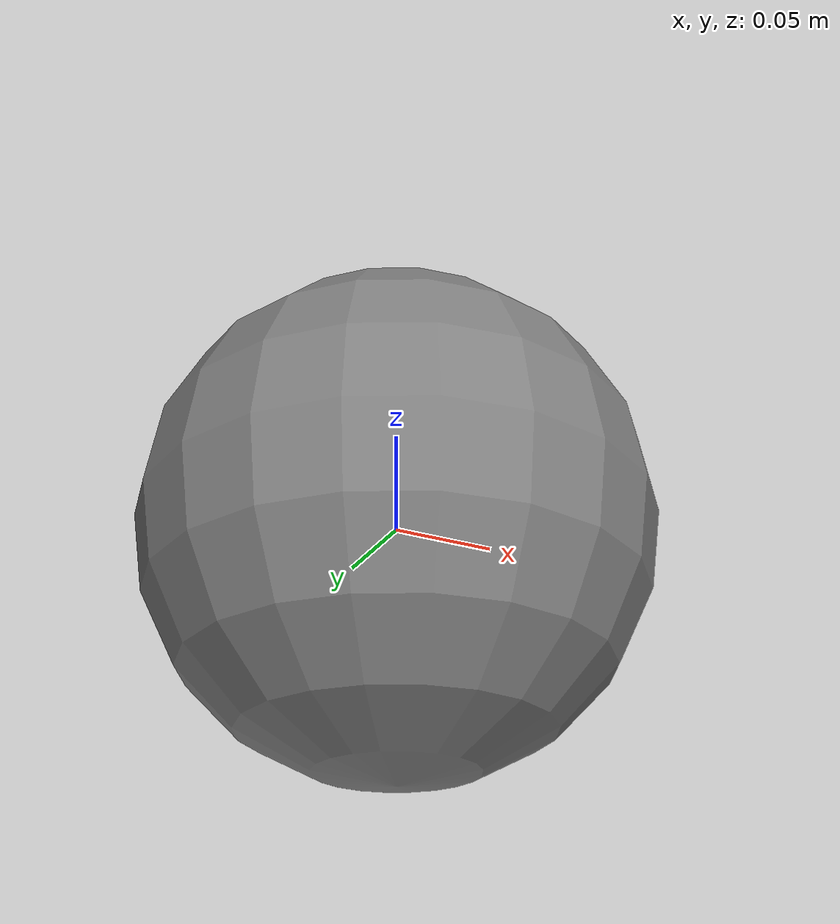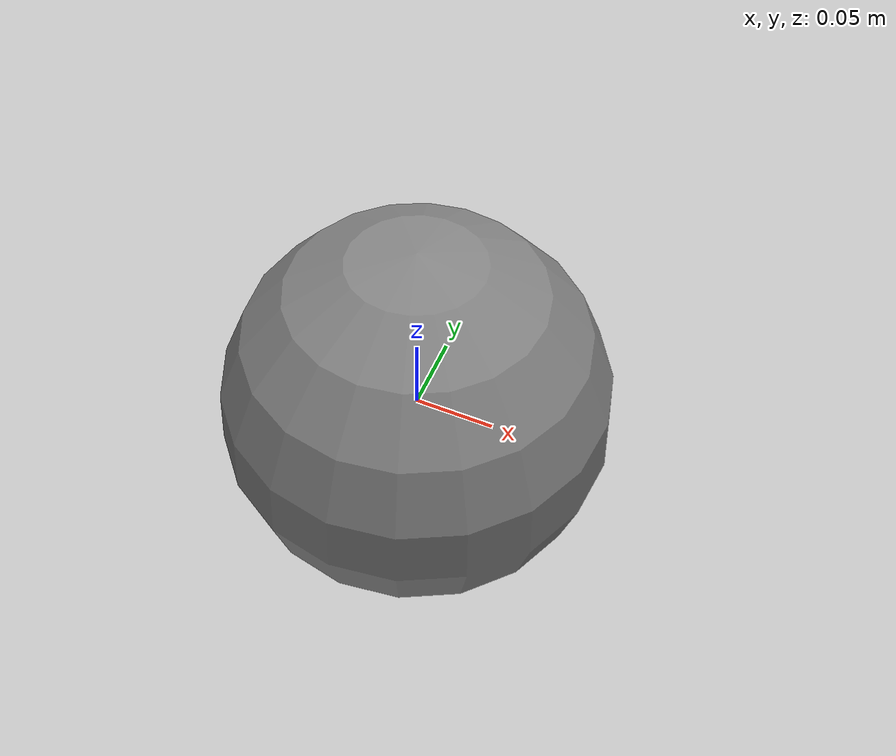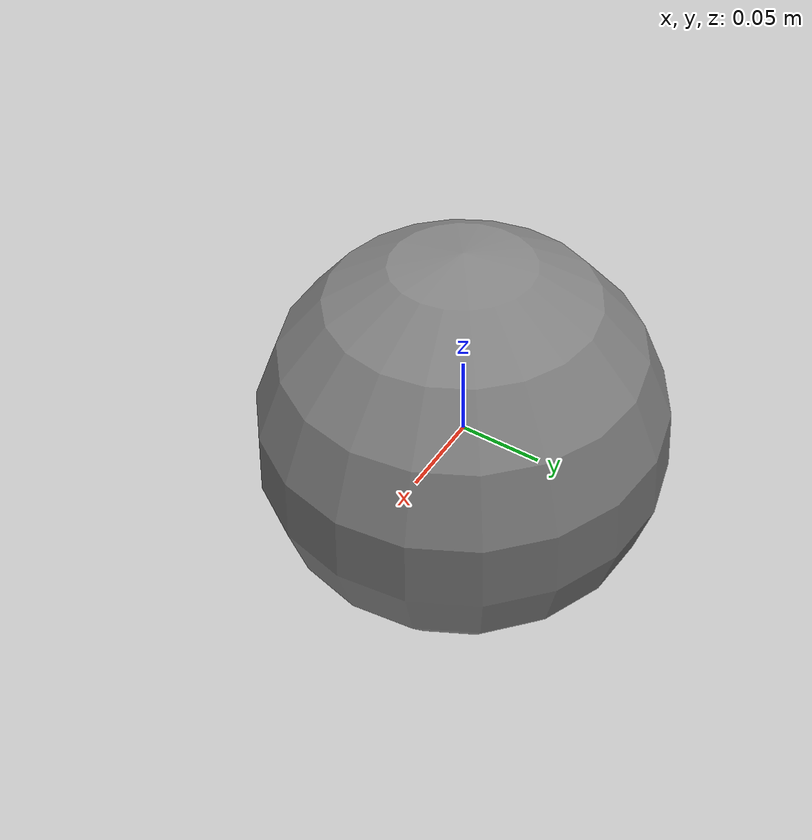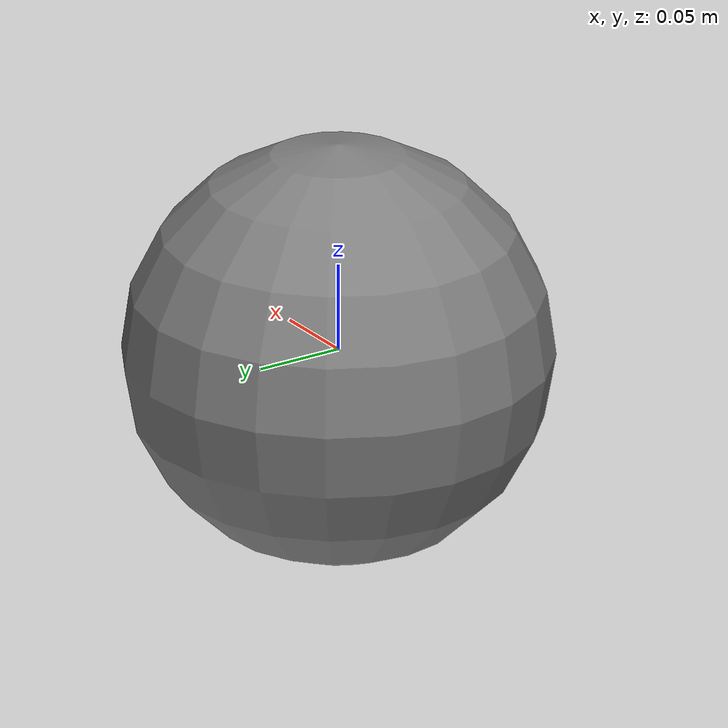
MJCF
<mujoco>
                <compiler angle="radian" discardvisual="false"/>
                <worldbody>
                    <body name="b" pos="0 0 0">
                        <geom name="collision" type="sphere" size="0.1" contype="1" conaffinity="1"/>
                        <geom name="visual" type="sphere" size="0.12" contype="0" conaffinity="0"/>
                    </body>
                </worldbody>
            </mujoco>
